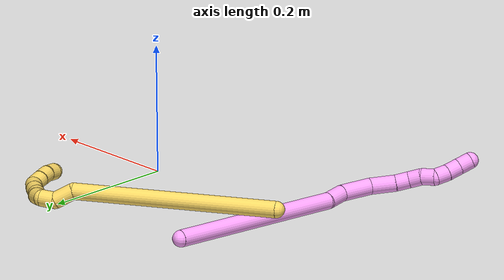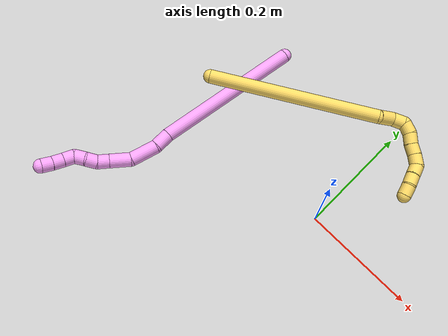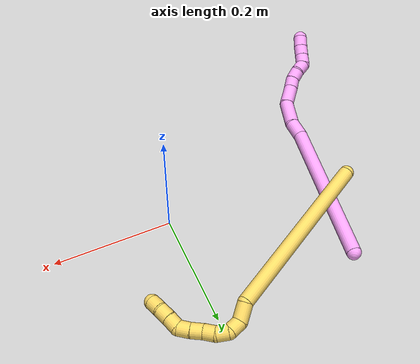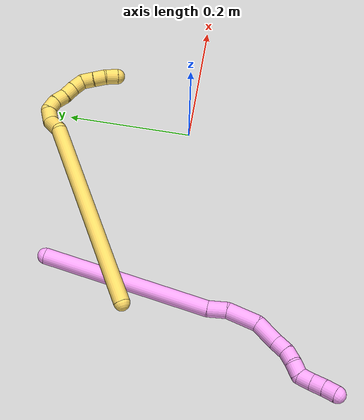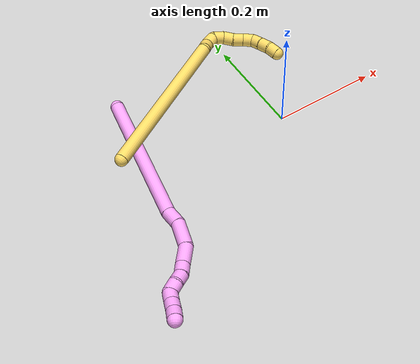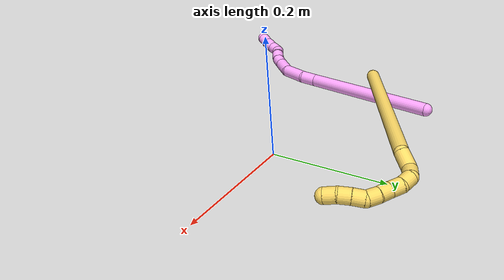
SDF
<sdf version="1.7">
 <world name="default">
  <model name="4">
   <static>0</static>
   <link name="4">
    <collision name="collision-cylinder-e_1_1_4">
     <pose>-0.010756 -0.047554 0.121374 0.373415 -0.082323 -0.01556</pose>
     <geometry><cylinder><radius>0.0125</radius><length>0.261601</length></cylinder></geometry>
     <surface>
      <friction><ode><mu>1.16</mu><mu2>1.16</mu2><slip1>0</slip1><slip2>0</slip2></ode></friction>
      <contact><ode><kp>1e+06</kp><kd>1</kd><max_vel>0</max_vel><min_depth>0.001</min_depth></ode></contact>
     </surface>
    </collision>
    <visual name="visual-cylinder-e_1_1_4">
     <pose>-0.010756 -0.047554 0.121374 0.373415 -0.082323 -0.01556</pose>
     <geometry><cylinder><radius>0.0125</radius><length>0.261601</length></cylinder></geometry>
     <material><ambient>1 0.65098 0.996078 1</ambient></material>
    </visual>
    <collision name="collision-cylinder-e_2_4_5">
     <pose>-0.022785 -0.103708 0.254981 0.612751 -0.084954 -0.026888</pose>
     <geometry><cylinder><radius>0.0125</radius><length>0.030014</length></cylinder></geometry>
     <surface>
      <friction><ode><mu>1.16</mu><mu2>1.16</mu2><slip1>0</slip1><slip2>0</slip2></ode></friction>
      <contact><ode><kp>1e+06</kp><kd>1</kd><max_vel>0</max_vel><min_depth>0.001</min_depth></ode></contact>
     </surface>
    </collision>
    <visual name="visual-cylinder-e_2_4_5">
     <pose>-0.022785 -0.103708 0.254981 0.612751 -0.084954 -0.026888</pose>
     <geometry><cylinder><radius>0.0125</radius><length>0.030014</length></cylinder></geometry>
     <material><ambient>1 0.65098 0.996078 1</ambient></material>
    </visual>
    <collision name="collision-cylinder-e_3_5_6">
     <pose>-0.023875 -0.119522 0.290528 0.300107 0.007503 0.001134</pose>
     <geometry><cylinder><radius>0.0125</radius><length>0.048813</length></cylinder></geometry>
     <surface>
      <friction><ode><mu>1.16</mu><mu2>1.16</mu2><slip1>0</slip1><slip2>0</slip2></ode></friction>
      <contact><ode><kp>1e+06</kp><kd>1</kd><max_vel>0</max_vel><min_depth>0.001</min_depth></ode></contact>
     </surface>
    </collision>
    <visual name="visual-cylinder-e_3_5_6">
     <pose>-0.023875 -0.119522 0.290528 0.300107 0.007503 0.001134</pose>
     <geometry><cylinder><radius>0.0125</radius><length>0.048813</length></cylinder></geometry>
     <material><ambient>1 0.65098 0.996078 1</ambient></material>
    </visual>
    <collision name="collision-cylinder-e_4_6_7">
     <pose>-0.018692 -0.12607 0.332243 -0.036231 0.265166 -0.004832</pose>
     <geometry><cylinder><radius>0.0125</radius><length>0.038158</length></cylinder></geometry>
     <surface>
      <friction><ode><mu>1.16</mu><mu2>1.16</mu2><slip1>0</slip1><slip2>0</slip2></ode></friction>
      <contact><ode><kp>1e+06</kp><kd>1</kd><max_vel>0</max_vel><min_depth>0.001</min_depth></ode></contact>
     </surface>
    </collision>
    <visual name="visual-cylinder-e_4_6_7">
     <pose>-0.018692 -0.12607 0.332243 -0.036231 0.265166 -0.004832</pose>
     <geometry><cylinder><radius>0.0125</radius><length>0.038158</length></cylinder></geometry>
     <material><ambient>1 0.65098 0.996078 1</ambient></material>
    </visual>
    <collision name="collision-cylinder-e_5_7_8">
     <pose>-0.010202 -0.126007 0.36062 0.060414 0.335931 0.010247</pose>
     <geometry><cylinder><radius>0.0125</radius><length>0.021174</length></cylinder></geometry>
     <surface>
      <friction><ode><mu>1.16</mu><mu2>1.16</mu2><slip1>0</slip1><slip2>0</slip2></ode></friction>
      <contact><ode><kp>1e+06</kp><kd>1</kd><max_vel>0</max_vel><min_depth>0.001</min_depth></ode></contact>
     </surface>
    </collision>
    <visual name="visual-cylinder-e_5_7_8">
     <pose>-0.010202 -0.126007 0.36062 0.060414 0.335931 0.010247</pose>
     <geometry><cylinder><radius>0.0125</radius><length>0.021174</length></cylinder></geometry>
     <material><ambient>1 0.65098 0.996078 1</ambient></material>
    </visual>
    <collision name="collision-cylinder-e_6_8_9">
     <pose>-0.00103 -0.125063 0.378719 -0.188283 0.602044 -0.05861</pose>
     <geometry><cylinder><radius>0.0125</radius><length>0.020065</length></cylinder></geometry>
     <surface>
      <friction><ode><mu>1.16</mu><mu2>1.16</mu2><slip1>0</slip1><slip2>0</slip2></ode></friction>
      <contact><ode><kp>1e+06</kp><kd>1</kd><max_vel>0</max_vel><min_depth>0.001</min_depth></ode></contact>
     </surface>
    </collision>
    <visual name="visual-cylinder-e_6_8_9">
     <pose>-0.00103 -0.125063 0.378719 -0.188283 0.602044 -0.05861</pose>
     <geometry><cylinder><radius>0.0125</radius><length>0.020065</length></cylinder></geometry>
     <material><ambient>1 0.65098 0.996078 1</ambient></material>
    </visual>
    <collision name="collision-cylinder-e_7_9_10">
     <pose>0.008443 -0.120104 0.3955 -0.375243 0.386942 -0.074359</pose>
     <geometry><cylinder><radius>0.0125</radius><length>0.020097</length></cylinder></geometry>
     <surface>
      <friction><ode><mu>1.16</mu><mu2>1.16</mu2><slip1>0</slip1><slip2>0</slip2></ode></friction>
      <contact><ode><kp>1e+06</kp><kd>1</kd><max_vel>0</max_vel><min_depth>0.001</min_depth></ode></contact>
     </surface>
    </collision>
    <visual name="visual-cylinder-e_7_9_10">
     <pose>0.008443 -0.120104 0.3955 -0.375243 0.386942 -0.074359</pose>
     <geometry><cylinder><radius>0.0125</radius><length>0.020097</length></cylinder></geometry>
     <material><ambient>1 0.65098 0.996078 1</ambient></material>
    </visual>
    <collision name="collision-cylinder-e_8_10_11">
     <pose>0.014252 -0.119584 0.413554 0.298459 0.202399 0.030532</pose>
     <geometry><cylinder><radius>0.0125</radius><length>0.02007</length></cylinder></geometry>
     <surface>
      <friction><ode><mu>1.16</mu><mu2>1.16</mu2><slip1>0</slip1><slip2>0</slip2></ode></friction>
      <contact><ode><kp>1e+06</kp><kd>1</kd><max_vel>0</max_vel><min_depth>0.001</min_depth></ode></contact>
     </surface>
    </collision>
    <visual name="visual-cylinder-e_8_10_11">
     <pose>0.014252 -0.119584 0.413554 0.298459 0.202399 0.030532</pose>
     <geometry><cylinder><radius>0.0125</radius><length>0.02007</length></cylinder></geometry>
     <material><ambient>1 0.65098 0.996078 1</ambient></material>
    </visual>
    <collision name="collision-cylinder-e_9_11_12">
     <pose>0.01927 -0.126065 0.431788 0.385794 0.30469 0.059961</pose>
     <geometry><cylinder><radius>0.0125</radius><length>0.020001</length></cylinder></geometry>
     <surface>
      <friction><ode><mu>1.16</mu><mu2>1.16</mu2><slip1>0</slip1><slip2>0</slip2></ode></friction>
      <contact><ode><kp>1e+06</kp><kd>1</kd><max_vel>0</max_vel><min_depth>0.001</min_depth></ode></contact>
     </surface>
    </collision>
    <visual name="visual-cylinder-e_9_11_12">
     <pose>0.01927 -0.126065 0.431788 0.385794 0.30469 0.059961</pose>
     <geometry><cylinder><radius>0.0125</radius><length>0.020001</length></cylinder></geometry>
     <material><ambient>1 0.65098 0.996078 1</ambient></material>
    </visual>
    <collision name="collision-cylinder-e_10_12_2">
     <pose>0.025885 -0.132844 0.449392 0.349005 0.369718 0.065909</pose>
     <geometry><cylinder><radius>0.0125</radius><length>0.020008</length></cylinder></geometry>
     <surface>
      <friction><ode><mu>1.16</mu><mu2>1.16</mu2><slip1>0</slip1><slip2>0</slip2></ode></friction>
      <contact><ode><kp>1e+06</kp><kd>1</kd><max_vel>0</max_vel><min_depth>0.001</min_depth></ode></contact>
     </surface>
    </collision>
    <visual name="visual-cylinder-e_10_12_2">
     <pose>0.025885 -0.132844 0.449392 0.349005 0.369718 0.065909</pose>
     <geometry><cylinder><radius>0.0125</radius><length>0.020008</length></cylinder></geometry>
     <material><ambient>1 0.65098 0.996078 1</ambient></material>
    </visual>
    <collision name="collision-sphere-2">
     <pose>0.0295 -0.136034 0.458158 0 -0 0</pose>
     <geometry><sphere><radius>0.0125</radius></sphere></geometry>
     <surface>
      <friction><ode><mu>1.16</mu><mu2>1.16</mu2><slip1>0</slip1><slip2>0</slip2></ode></friction>
      <contact><ode><kp>1e+06</kp><kd>1</kd><max_vel>0</max_vel><min_depth>0.001</min_depth></ode></contact>
     </surface>
    </collision>
    <visual name="visual-sphere-2">
     <pose>0.0295 -0.136034 0.458158 0 -0 0</pose>
     <geometry><sphere><radius>0.0125</radius></sphere></geometry>
     <material><ambient>1 0.65098 0.996078 1</ambient></material>
    </visual>
    <collision name="collision-sphere-12">
     <pose>0.02227 -0.129654 0.440626 0 -0 0</pose>
     <geometry><sphere><radius>0.0125</radius></sphere></geometry>
     <surface>
      <friction><ode><mu>1.16</mu><mu2>1.16</mu2><slip1>0</slip1><slip2>0</slip2></ode></friction>
      <contact><ode><kp>1e+06</kp><kd>1</kd><max_vel>0</max_vel><min_depth>0.001</min_depth></ode></contact>
     </surface>
    </collision>
    <visual name="visual-sphere-12">
     <pose>0.02227 -0.129654 0.440626 0 -0 0</pose>
     <geometry><sphere><radius>0.0125</radius></sphere></geometry>
     <material><ambient>1 0.65098 0.996078 1</ambient></material>
    </visual>
    <collision name="collision-sphere-11">
     <pose>0.01627 -0.122475 0.422949 0 -0 0</pose>
     <geometry><sphere><radius>0.0125</radius></sphere></geometry>
     <surface>
      <friction><ode><mu>1.16</mu><mu2>1.16</mu2><slip1>0</slip1><slip2>0</slip2></ode></friction>
      <contact><ode><kp>1e+06</kp><kd>1</kd><max_vel>0</max_vel><min_depth>0.001</min_depth></ode></contact>
     </surface>
    </collision>
    <visual name="visual-sphere-11">
     <pose>0.01627 -0.122475 0.422949 0 -0 0</pose>
     <geometry><sphere><radius>0.0125</radius></sphere></geometry>
     <material><ambient>1 0.65098 0.996078 1</ambient></material>
    </visual>
    <collision name="collision-sphere-10">
     <pose>0.012235 -0.116694 0.404158 0 -0 0</pose>
     <geometry><sphere><radius>0.0125</radius></sphere></geometry>
     <surface>
      <friction><ode><mu>1.16</mu><mu2>1.16</mu2><slip1>0</slip1><slip2>0</slip2></ode></friction>
      <contact><ode><kp>1e+06</kp><kd>1</kd><max_vel>0</max_vel><min_depth>0.001</min_depth></ode></contact>
     </surface>
    </collision>
    <visual name="visual-sphere-10">
     <pose>0.012235 -0.116694 0.404158 0 -0 0</pose>
     <geometry><sphere><radius>0.0125</radius></sphere></geometry>
     <material><ambient>1 0.65098 0.996078 1</ambient></material>
    </visual>
    <collision name="collision-sphere-9">
     <pose>0.004651 -0.123515 0.386842 0 -0 0</pose>
     <geometry><sphere><radius>0.0125</radius></sphere></geometry>
     <surface>
      <friction><ode><mu>1.16</mu><mu2>1.16</mu2><slip1>0</slip1><slip2>0</slip2></ode></friction>
      <contact><ode><kp>1e+06</kp><kd>1</kd><max_vel>0</max_vel><min_depth>0.001</min_depth></ode></contact>
     </surface>
    </collision>
    <visual name="visual-sphere-9">
     <pose>0.004651 -0.123515 0.386842 0 -0 0</pose>
     <geometry><sphere><radius>0.0125</radius></sphere></geometry>
     <material><ambient>1 0.65098 0.996078 1</ambient></material>
    </visual>
    <collision name="collision-sphere-4">
     <pose>-0.021511 -0.095108 0.242748 0 -0 0</pose>
     <geometry><sphere><radius>0.0125</radius></sphere></geometry>
     <surface>
      <friction><ode><mu>1.16</mu><mu2>1.16</mu2><slip1>0</slip1><slip2>0</slip2></ode></friction>
      <contact><ode><kp>1e+06</kp><kd>1</kd><max_vel>0</max_vel><min_depth>0.001</min_depth></ode></contact>
     </surface>
    </collision>
    <visual name="visual-sphere-4">
     <pose>-0.021511 -0.095108 0.242748 0 -0 0</pose>
     <geometry><sphere><radius>0.0125</radius></sphere></geometry>
     <material><ambient>1 0.65098 0.996078 1</ambient></material>
    </visual>
    <collision name="collision-sphere-1">
     <geometry><sphere><radius>0.0125</radius></sphere></geometry>
     <surface>
      <friction><ode><mu>1.16</mu><mu2>1.16</mu2><slip1>0</slip1><slip2>0</slip2></ode></friction>
      <contact><ode><kp>1e+06</kp><kd>1</kd><max_vel>0</max_vel><min_depth>0.001</min_depth></ode></contact>
     </surface>
    </collision>
    <visual name="visual-sphere-1">
     <geometry><sphere><radius>0.0125</radius></sphere></geometry>
     <material><ambient>1 0.65098 0.996078 1</ambient></material>
    </visual>
    <collision name="collision-sphere-8">
     <pose>-0.006712 -0.12661 0.370597 0 -0 0</pose>
     <geometry><sphere><radius>0.0125</radius></sphere></geometry>
     <surface>
      <friction><ode><mu>1.16</mu><mu2>1.16</mu2><slip1>0</slip1><slip2>0</slip2></ode></friction>
      <contact><ode><kp>1e+06</kp><kd>1</kd><max_vel>0</max_vel><min_depth>0.001</min_depth></ode></contact>
     </surface>
    </collision>
    <visual name="visual-sphere-8">
     <pose>-0.006712 -0.12661 0.370597 0 -0 0</pose>
     <geometry><sphere><radius>0.0125</radius></sphere></geometry>
     <material><ambient>1 0.65098 0.996078 1</ambient></material>
    </visual>
    <collision name="collision-sphere-5">
     <pose>-0.024058 -0.112307 0.267213 0 -0 0</pose>
     <geometry><sphere><radius>0.0125</radius></sphere></geometry>
     <surface>
      <friction><ode><mu>1.16</mu><mu2>1.16</mu2><slip1>0</slip1><slip2>0</slip2></ode></friction>
      <contact><ode><kp>1e+06</kp><kd>1</kd><max_vel>0</max_vel><min_depth>0.001</min_depth></ode></contact>
     </surface>
    </collision>
    <visual name="visual-sphere-5">
     <pose>-0.024058 -0.112307 0.267213 0 -0 0</pose>
     <geometry><sphere><radius>0.0125</radius></sphere></geometry>
     <material><ambient>1 0.65098 0.996078 1</ambient></material>
    </visual>
    <collision name="collision-sphere-6">
     <pose>-0.023692 -0.126737 0.313843 0 -0 0</pose>
     <geometry><sphere><radius>0.0125</radius></sphere></geometry>
     <surface>
      <friction><ode><mu>1.16</mu><mu2>1.16</mu2><slip1>0</slip1><slip2>0</slip2></ode></friction>
      <contact><ode><kp>1e+06</kp><kd>1</kd><max_vel>0</max_vel><min_depth>0.001</min_depth></ode></contact>
     </surface>
    </collision>
    <visual name="visual-sphere-6">
     <pose>-0.023692 -0.126737 0.313843 0 -0 0</pose>
     <geometry><sphere><radius>0.0125</radius></sphere></geometry>
     <material><ambient>1 0.65098 0.996078 1</ambient></material>
    </visual>
    <collision name="collision-sphere-7">
     <pose>-0.013692 -0.125403 0.350643 0 -0 0</pose>
     <geometry><sphere><radius>0.0125</radius></sphere></geometry>
     <surface>
      <friction><ode><mu>1.16</mu><mu2>1.16</mu2><slip1>0</slip1><slip2>0</slip2></ode></friction>
      <contact><ode><kp>1e+06</kp><kd>1</kd><max_vel>0</max_vel><min_depth>0.001</min_depth></ode></contact>
     </surface>
    </collision>
    <visual name="visual-sphere-7">
     <pose>-0.013692 -0.125403 0.350643 0 -0 0</pose>
     <geometry><sphere><radius>0.0125</radius></sphere></geometry>
     <material><ambient>1 0.65098 0.996078 1</ambient></material>
    </visual>
    <inertial>
     <pose>-0.008508 -0.082736 0.230749 0 -0 0</pose>
     <mass>0.5</mass>
     <inertia>
      <ixx>0.001505</ixx>
      <ixy>0</ixy>
      <ixz>0</ixz>
      <iyy>0.001394</iyy>
      <iyz>0</iyz>
      <izz>0.000707</izz>
     </inertia>
    </inertial>
   </link>
   <pose>-0.24776 0.182712 0.011657 -1.8045 -1.03968 2.82617</pose>
  </model>
  <model name="5">
   <static>0</static>
   <link name="5">
    <collision name="collision-cylinder-e_1_1_4">
     <pose>0.00574 -0.004793 -0.153199 3.11032 0.037433 1.74955</pose>
     <geometry><cylinder><radius>0.0125</radius><length>0.306763</length></cylinder></geometry>
     <surface>
      <friction><ode><mu>1.16</mu><mu2>1.16</mu2><slip1>0</slip1><slip2>0</slip2></ode></friction>
      <contact><ode><kp>1e+06</kp><kd>1</kd><max_vel>0</max_vel><min_depth>0.001</min_depth></ode></contact>
     </surface>
    </collision>
    <visual name="visual-cylinder-e_1_1_4">
     <pose>0.00574 -0.004793 -0.153199 3.11032 0.037433 1.74955</pose>
     <geometry><cylinder><radius>0.0125</radius><length>0.306763</length></cylinder></geometry>
     <material><ambient>1 0.858824 0.4 1</ambient></material>
    </visual>
    <collision name="collision-cylinder-e_2_4_5">
     <pose>0.019154 -0.006353 -0.319284 -2.89577 0.523791 -2.2779</pose>
     <geometry><cylinder><radius>0.0125</radius><length>0.030685</length></cylinder></geometry>
     <surface>
      <friction><ode><mu>1.16</mu><mu2>1.16</mu2><slip1>0</slip1><slip2>0</slip2></ode></friction>
      <contact><ode><kp>1e+06</kp><kd>1</kd><max_vel>0</max_vel><min_depth>0.001</min_depth></ode></contact>
     </surface>
    </collision>
    <visual name="visual-cylinder-e_2_4_5">
     <pose>0.019154 -0.006353 -0.319284 -2.89577 0.523791 -2.2779</pose>
     <geometry><cylinder><radius>0.0125</radius><length>0.030685</length></cylinder></geometry>
     <material><ambient>1 0.858824 0.4 1</ambient></material>
    </visual>
    <collision name="collision-cylinder-e_3_5_6">
     <pose>0.025734 -0.002869 -0.343313 -3.11903 -0.097818 2.68856</pose>
     <geometry><cylinder><radius>0.0125</radius><length>0.022399</length></cylinder></geometry>
     <surface>
      <friction><ode><mu>1.16</mu><mu2>1.16</mu2><slip1>0</slip1><slip2>0</slip2></ode></friction>
      <contact><ode><kp>1e+06</kp><kd>1</kd><max_vel>0</max_vel><min_depth>0.001</min_depth></ode></contact>
     </surface>
    </collision>
    <visual name="visual-cylinder-e_3_5_6">
     <pose>0.025734 -0.002869 -0.343313 -3.11903 -0.097818 2.68856</pose>
     <geometry><cylinder><radius>0.0125</radius><length>0.022399</length></cylinder></geometry>
     <material><ambient>1 0.858824 0.4 1</ambient></material>
    </visual>
    <collision name="collision-cylinder-e_4_6_7">
     <pose>0.019647 0.002756 -0.361329 -2.47805 -0.519849 1.31481</pose>
     <geometry><cylinder><radius>0.0125</radius><length>0.020104</length></cylinder></geometry>
     <surface>
      <friction><ode><mu>1.16</mu><mu2>1.16</mu2><slip1>0</slip1><slip2>0</slip2></ode></friction>
      <contact><ode><kp>1e+06</kp><kd>1</kd><max_vel>0</max_vel><min_depth>0.001</min_depth></ode></contact>
     </surface>
    </collision>
    <visual name="visual-cylinder-e_4_6_7">
     <pose>0.019647 0.002756 -0.361329 -2.47805 -0.519849 1.31481</pose>
     <geometry><cylinder><radius>0.0125</radius><length>0.020104</length></cylinder></geometry>
     <material><ambient>1 0.858824 0.4 1</ambient></material>
    </visual>
    <collision name="collision-cylinder-e_5_7_8">
     <pose>0.007904 0.014522 -0.371891 -2.0942 -0.740714 1.18386</pose>
     <geometry><cylinder><radius>0.0125</radius><length>0.020004</length></cylinder></geometry>
     <surface>
      <friction><ode><mu>1.16</mu><mu2>1.16</mu2><slip1>0</slip1><slip2>0</slip2></ode></friction>
      <contact><ode><kp>1e+06</kp><kd>1</kd><max_vel>0</max_vel><min_depth>0.001</min_depth></ode></contact>
     </surface>
    </collision>
    <visual name="visual-cylinder-e_5_7_8">
     <pose>0.007904 0.014522 -0.371891 -2.0942 -0.740714 1.18386</pose>
     <geometry><cylinder><radius>0.0125</radius><length>0.020004</length></cylinder></geometry>
     <material><ambient>1 0.858824 0.4 1</ambient></material>
    </visual>
    <collision name="collision-cylinder-e_6_8_9">
     <pose>-0.005653 0.026078 -0.380797 -2.36129 -0.747836 1.52388</pose>
     <geometry><cylinder><radius>0.0125</radius><length>0.020021</length></cylinder></geometry>
     <surface>
      <friction><ode><mu>1.16</mu><mu2>1.16</mu2><slip1>0</slip1><slip2>0</slip2></ode></friction>
      <contact><ode><kp>1e+06</kp><kd>1</kd><max_vel>0</max_vel><min_depth>0.001</min_depth></ode></contact>
     </surface>
    </collision>
    <visual name="visual-cylinder-e_6_8_9">
     <pose>-0.005653 0.026078 -0.380797 -2.36129 -0.747836 1.52388</pose>
     <geometry><cylinder><radius>0.0125</radius><length>0.020021</length></cylinder></geometry>
     <material><ambient>1 0.858824 0.4 1</ambient></material>
    </visual>
    <collision name="collision-cylinder-e_7_9_10">
     <pose>-0.019852 0.03658 -0.39013 -2.22773 -0.831291 1.46313</pose>
     <geometry><cylinder><radius>0.0125</radius><length>0.020008</length></cylinder></geometry>
     <surface>
      <friction><ode><mu>1.16</mu><mu2>1.16</mu2><slip1>0</slip1><slip2>0</slip2></ode></friction>
      <contact><ode><kp>1e+06</kp><kd>1</kd><max_vel>0</max_vel><min_depth>0.001</min_depth></ode></contact>
     </surface>
    </collision>
    <visual name="visual-cylinder-e_7_9_10">
     <pose>-0.019852 0.03658 -0.39013 -2.22773 -0.831291 1.46313</pose>
     <geometry><cylinder><radius>0.0125</radius><length>0.020008</length></cylinder></geometry>
     <material><ambient>1 0.858824 0.4 1</ambient></material>
    </visual>
    <collision name="collision-cylinder-e_8_10_11">
     <pose>-0.036062 0.046355 -0.39263 -1.22111 -1.07928 0.793736</pose>
     <geometry><cylinder><radius>0.0125</radius><length>0.020007</length></cylinder></geometry>
     <surface>
      <friction><ode><mu>1.16</mu><mu2>1.16</mu2><slip1>0</slip1><slip2>0</slip2></ode></friction>
      <contact><ode><kp>1e+06</kp><kd>1</kd><max_vel>0</max_vel><min_depth>0.001</min_depth></ode></contact>
     </surface>
    </collision>
    <visual name="visual-cylinder-e_8_10_11">
     <pose>-0.036062 0.046355 -0.39263 -1.22111 -1.07928 0.793736</pose>
     <geometry><cylinder><radius>0.0125</radius><length>0.020007</length></cylinder></geometry>
     <material><ambient>1 0.858824 0.4 1</ambient></material>
    </visual>
    <collision name="collision-cylinder-e_9_11_12">
     <pose>-0.053386 0.055896 -0.389746 -1.32766 -1.01682 0.822184</pose>
     <geometry><cylinder><radius>0.0125</radius><length>0.02</length></cylinder></geometry>
     <surface>
      <friction><ode><mu>1.16</mu><mu2>1.16</mu2><slip1>0</slip1><slip2>0</slip2></ode></friction>
      <contact><ode><kp>1e+06</kp><kd>1</kd><max_vel>0</max_vel><min_depth>0.001</min_depth></ode></contact>
     </surface>
    </collision>
    <visual name="visual-cylinder-e_9_11_12">
     <pose>-0.053386 0.055896 -0.389746 -1.32766 -1.01682 0.822184</pose>
     <geometry><cylinder><radius>0.0125</radius><length>0.02</length></cylinder></geometry>
     <material><ambient>1 0.858824 0.4 1</ambient></material>
    </visual>
    <collision name="collision-cylinder-e_10_12_2">
     <pose>-0.068984 0.067843 -0.386754 -1.32382 -0.788154 0.626654</pose>
     <geometry><cylinder><radius>0.0125</radius><length>0.02001</length></cylinder></geometry>
     <surface>
      <friction><ode><mu>1.16</mu><mu2>1.16</mu2><slip1>0</slip1><slip2>0</slip2></ode></friction>
      <contact><ode><kp>1e+06</kp><kd>1</kd><max_vel>0</max_vel><min_depth>0.001</min_depth></ode></contact>
     </surface>
    </collision>
    <visual name="visual-cylinder-e_10_12_2">
     <pose>-0.068984 0.067843 -0.386754 -1.32382 -0.788154 0.626654</pose>
     <geometry><cylinder><radius>0.0125</radius><length>0.02001</length></cylinder></geometry>
     <material><ambient>1 0.858824 0.4 1</ambient></material>
    </visual>
    <collision name="collision-sphere-2">
     <pose>-0.076078 0.074684 -0.385029 0 -0 0</pose>
     <geometry><sphere><radius>0.0125</radius></sphere></geometry>
     <surface>
      <friction><ode><mu>1.16</mu><mu2>1.16</mu2><slip1>0</slip1><slip2>0</slip2></ode></friction>
      <contact><ode><kp>1e+06</kp><kd>1</kd><max_vel>0</max_vel><min_depth>0.001</min_depth></ode></contact>
     </surface>
    </collision>
    <visual name="visual-sphere-2">
     <pose>-0.076078 0.074684 -0.385029 0 -0 0</pose>
     <geometry><sphere><radius>0.0125</radius></sphere></geometry>
     <material><ambient>1 0.858824 0.4 1</ambient></material>
    </visual>
    <collision name="collision-sphere-12">
     <pose>-0.06189 0.061002 -0.388479 0 -0 0</pose>
     <geometry><sphere><radius>0.0125</radius></sphere></geometry>
     <surface>
      <friction><ode><mu>1.16</mu><mu2>1.16</mu2><slip1>0</slip1><slip2>0</slip2></ode></friction>
      <contact><ode><kp>1e+06</kp><kd>1</kd><max_vel>0</max_vel><min_depth>0.001</min_depth></ode></contact>
     </surface>
    </collision>
    <visual name="visual-sphere-12">
     <pose>-0.06189 0.061002 -0.388479 0 -0 0</pose>
     <geometry><sphere><radius>0.0125</radius></sphere></geometry>
     <material><ambient>1 0.858824 0.4 1</ambient></material>
    </visual>
    <collision name="collision-sphere-11">
     <pose>-0.044881 0.05079 -0.391012 0 -0 0</pose>
     <geometry><sphere><radius>0.0125</radius></sphere></geometry>
     <surface>
      <friction><ode><mu>1.16</mu><mu2>1.16</mu2><slip1>0</slip1><slip2>0</slip2></ode></friction>
      <contact><ode><kp>1e+06</kp><kd>1</kd><max_vel>0</max_vel><min_depth>0.001</min_depth></ode></contact>
     </surface>
    </collision>
    <visual name="visual-sphere-11">
     <pose>-0.044881 0.05079 -0.391012 0 -0 0</pose>
     <geometry><sphere><radius>0.0125</radius></sphere></geometry>
     <material><ambient>1 0.858824 0.4 1</ambient></material>
    </visual>
    <collision name="collision-sphere-10">
     <pose>-0.027243 0.041919 -0.394247 0 -0 0</pose>
     <geometry><sphere><radius>0.0125</radius></sphere></geometry>
     <surface>
      <friction><ode><mu>1.16</mu><mu2>1.16</mu2><slip1>0</slip1><slip2>0</slip2></ode></friction>
      <contact><ode><kp>1e+06</kp><kd>1</kd><max_vel>0</max_vel><min_depth>0.001</min_depth></ode></contact>
     </surface>
    </collision>
    <visual name="visual-sphere-10">
     <pose>-0.027243 0.041919 -0.394247 0 -0 0</pose>
     <geometry><sphere><radius>0.0125</radius></sphere></geometry>
     <material><ambient>1 0.858824 0.4 1</ambient></material>
    </visual>
    <collision name="collision-sphere-9">
     <pose>-0.012461 0.031242 -0.386013 0 -0 0</pose>
     <geometry><sphere><radius>0.0125</radius></sphere></geometry>
     <surface>
      <friction><ode><mu>1.16</mu><mu2>1.16</mu2><slip1>0</slip1><slip2>0</slip2></ode></friction>
      <contact><ode><kp>1e+06</kp><kd>1</kd><max_vel>0</max_vel><min_depth>0.001</min_depth></ode></contact>
     </surface>
    </collision>
    <visual name="visual-sphere-9">
     <pose>-0.012461 0.031242 -0.386013 0 -0 0</pose>
     <geometry><sphere><radius>0.0125</radius></sphere></geometry>
     <material><ambient>1 0.858824 0.4 1</ambient></material>
    </visual>
    <collision name="collision-sphere-4">
     <pose>0.01148 -0.009586 -0.306398 0 -0 0</pose>
     <geometry><sphere><radius>0.0125</radius></sphere></geometry>
     <surface>
      <friction><ode><mu>1.16</mu><mu2>1.16</mu2><slip1>0</slip1><slip2>0</slip2></ode></friction>
      <contact><ode><kp>1e+06</kp><kd>1</kd><max_vel>0</max_vel><min_depth>0.001</min_depth></ode></contact>
     </surface>
    </collision>
    <visual name="visual-sphere-4">
     <pose>0.01148 -0.009586 -0.306398 0 -0 0</pose>
     <geometry><sphere><radius>0.0125</radius></sphere></geometry>
     <material><ambient>1 0.858824 0.4 1</ambient></material>
    </visual>
    <collision name="collision-sphere-1">
     <geometry><sphere><radius>0.0125</radius></sphere></geometry>
     <surface>
      <friction><ode><mu>1.16</mu><mu2>1.16</mu2><slip1>0</slip1><slip2>0</slip2></ode></friction>
      <contact><ode><kp>1e+06</kp><kd>1</kd><max_vel>0</max_vel><min_depth>0.001</min_depth></ode></contact>
     </surface>
    </collision>
    <visual name="visual-sphere-1">
     <geometry><sphere><radius>0.0125</radius></sphere></geometry>
     <material><ambient>1 0.858824 0.4 1</ambient></material>
    </visual>
    <collision name="collision-sphere-8">
     <pose>0.001155 0.020915 -0.37558 0 -0 0</pose>
     <geometry><sphere><radius>0.0125</radius></sphere></geometry>
     <surface>
      <friction><ode><mu>1.16</mu><mu2>1.16</mu2><slip1>0</slip1><slip2>0</slip2></ode></friction>
      <contact><ode><kp>1e+06</kp><kd>1</kd><max_vel>0</max_vel><min_depth>0.001</min_depth></ode></contact>
     </surface>
    </collision>
    <visual name="visual-sphere-8">
     <pose>0.001155 0.020915 -0.37558 0 -0 0</pose>
     <geometry><sphere><radius>0.0125</radius></sphere></geometry>
     <material><ambient>1 0.858824 0.4 1</ambient></material>
    </visual>
    <collision name="collision-sphere-5">
     <pose>0.026828 -0.00312 -0.33217 0 -0 0</pose>
     <geometry><sphere><radius>0.0125</radius></sphere></geometry>
     <surface>
      <friction><ode><mu>1.16</mu><mu2>1.16</mu2><slip1>0</slip1><slip2>0</slip2></ode></friction>
      <contact><ode><kp>1e+06</kp><kd>1</kd><max_vel>0</max_vel><min_depth>0.001</min_depth></ode></contact>
     </surface>
    </collision>
    <visual name="visual-sphere-5">
     <pose>0.026828 -0.00312 -0.33217 0 -0 0</pose>
     <geometry><sphere><radius>0.0125</radius></sphere></geometry>
     <material><ambient>1 0.858824 0.4 1</ambient></material>
    </visual>
    <collision name="collision-sphere-6">
     <pose>0.02464 -0.002617 -0.354456 0 -0 0</pose>
     <geometry><sphere><radius>0.0125</radius></sphere></geometry>
     <surface>
      <friction><ode><mu>1.16</mu><mu2>1.16</mu2><slip1>0</slip1><slip2>0</slip2></ode></friction>
      <contact><ode><kp>1e+06</kp><kd>1</kd><max_vel>0</max_vel><min_depth>0.001</min_depth></ode></contact>
     </surface>
    </collision>
    <visual name="visual-sphere-6">
     <pose>0.02464 -0.002617 -0.354456 0 -0 0</pose>
     <geometry><sphere><radius>0.0125</radius></sphere></geometry>
     <material><ambient>1 0.858824 0.4 1</ambient></material>
    </visual>
    <collision name="collision-sphere-7">
     <pose>0.014654 0.008129 -0.368202 0 -0 0</pose>
     <geometry><sphere><radius>0.0125</radius></sphere></geometry>
     <surface>
      <friction><ode><mu>1.16</mu><mu2>1.16</mu2><slip1>0</slip1><slip2>0</slip2></ode></friction>
      <contact><ode><kp>1e+06</kp><kd>1</kd><max_vel>0</max_vel><min_depth>0.001</min_depth></ode></contact>
     </surface>
    </collision>
    <visual name="visual-sphere-7">
     <pose>0.014654 0.008129 -0.368202 0 -0 0</pose>
     <geometry><sphere><radius>0.0125</radius></sphere></geometry>
     <material><ambient>1 0.858824 0.4 1</ambient></material>
    </visual>
    <inertial>
     <pose>-0.000404 0.006547 -0.23601 0 -0 0</pose>
     <mass>0.5</mass>
     <inertia>
      <ixx>0.001945</ixx>
      <ixy>0</ixy>
      <ixz>0</ixz>
      <iyy>0.002829</iyy>
      <iyz>0</iyz>
      <izz>-4.6e-05</izz>
     </inertia>
    </inertial>
   </link>
   <pose>-0.306844 0.050072 0.036438 -1.5558 0.602045 2.06257</pose>
  </model>
 </world>
</sdf>
